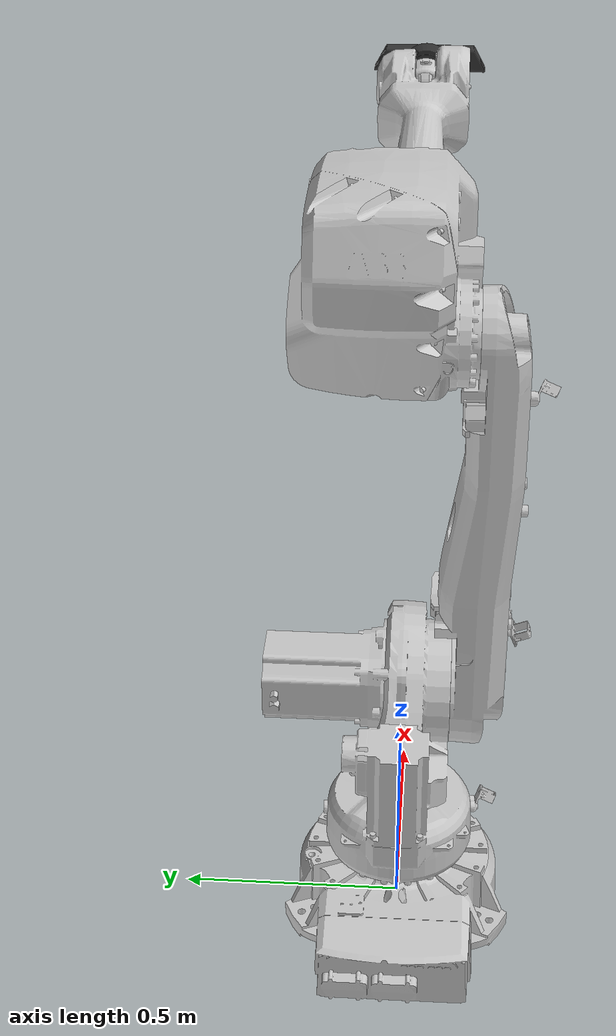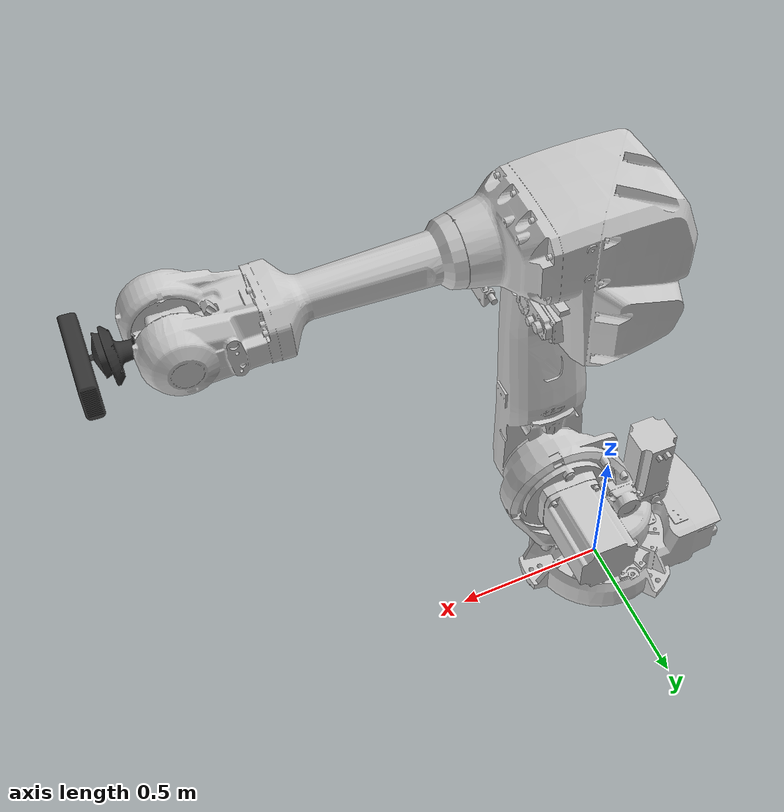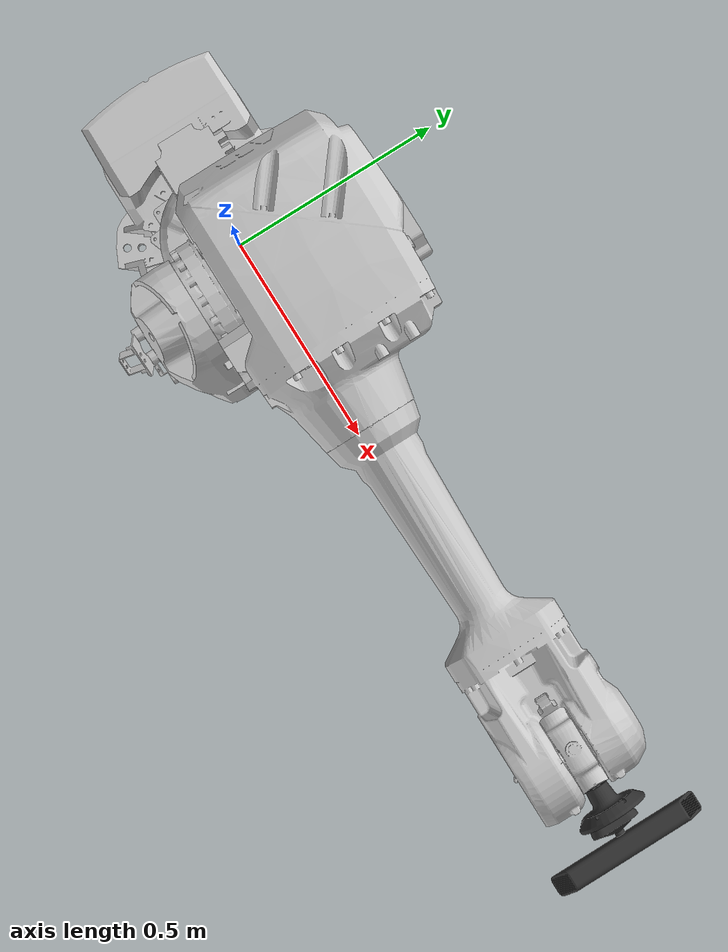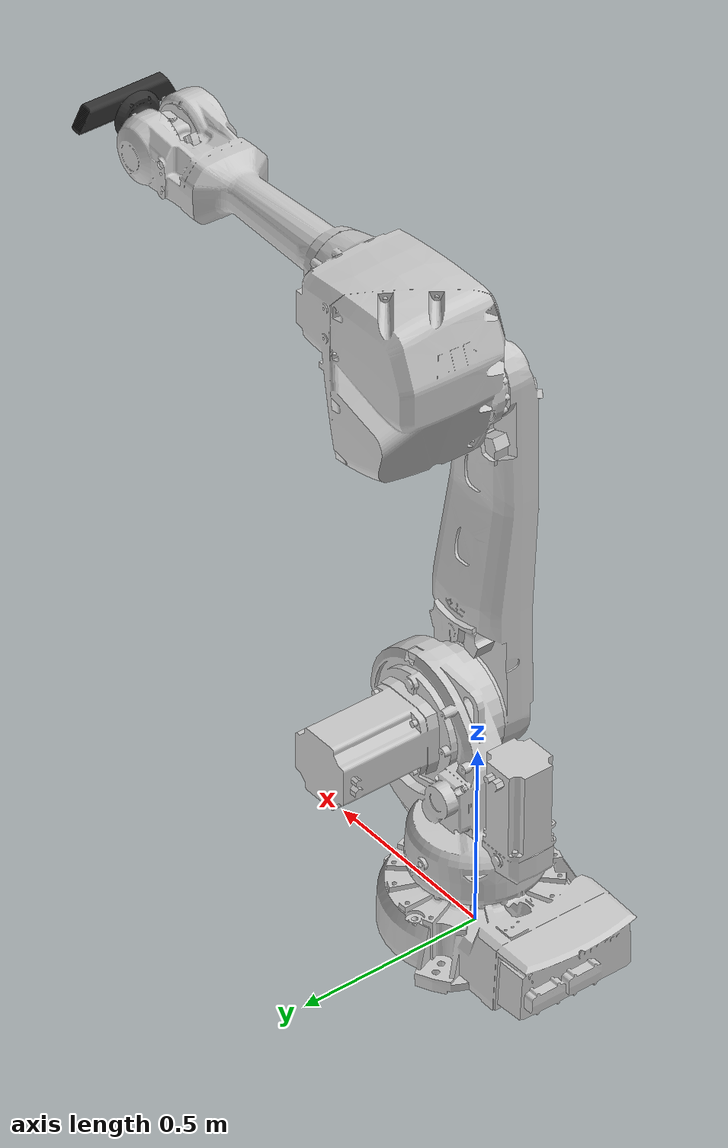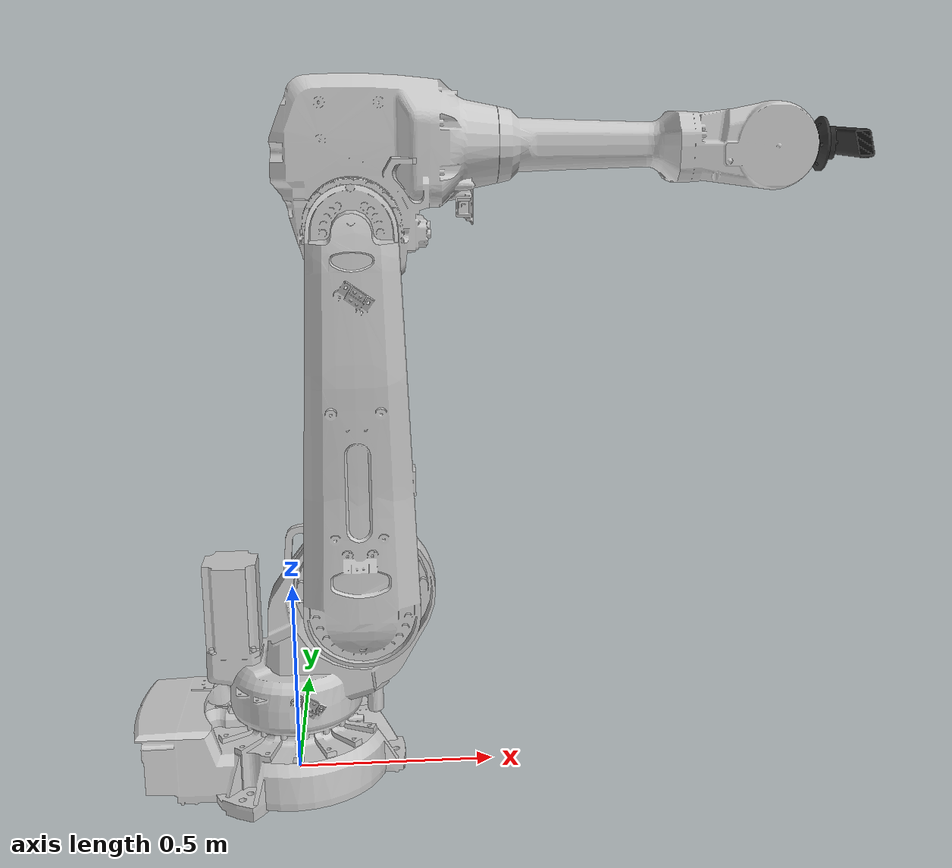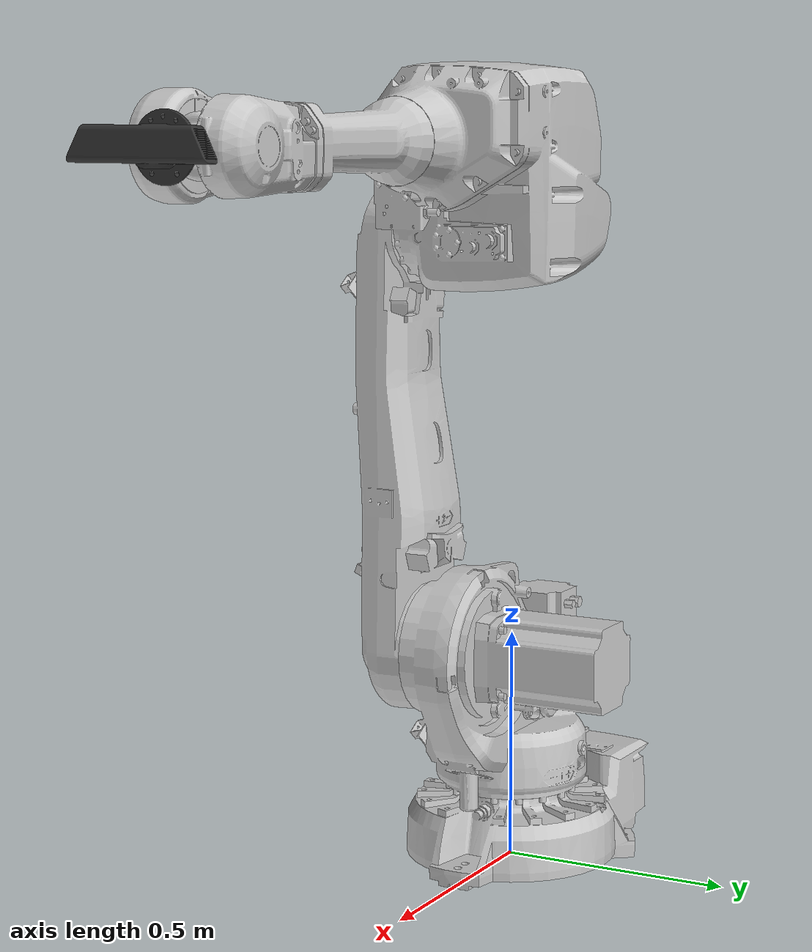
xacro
<?xml version="1.0"?>
<robot xmlns:xacro="http://www.ros.org/wiki/xacro" name="abb_irb">
    <xacro:arg name="initial_positions_file" default="initial_positions.yaml" />

    <!-- Import abb_irb urdf file -->
    <xacro:include filename="$(find abb_model)/urdf/abb_irb4600_60_205.xacro" />

    <!-- Import control_xacro -->
    <xacro:include filename="abb_irb.ros2_control.xacro" />

    <xacro:abb_irb_ros2_control name="FakeSystem" initial_positions_file="$(arg initial_positions_file)"/>

</robot>

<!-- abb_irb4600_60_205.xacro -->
<robot name="abb_irb" xmlns:xacro="http://ros.org/wiki/xacro">

	<xacro:include filename="$(find abb_model)/urdf/abb_irb4600_60_205_macro.xacro" />
	<xacro:abb_irb4600_60_205 prefix=""/>

    <xacro:include filename="$(find abb_model)/urdf/camera.xacro" />

</robot>

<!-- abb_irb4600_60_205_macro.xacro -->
<robot xmlns:xacro="http://ros.org/wiki/xacro">

    <xacro:macro name="abb_irb4600_60_205" params="prefix">
    <!-- link list -->
        <link name="world"/>

        <joint name="to_world" type="fixed">
            <origin xyz="0 0 0" rpy="0 0 0" />
            <parent link="world"/>
            <child link="${prefix}base_link"/>
        </joint>

        <link name="${prefix}base_link">
            <visual>
                <origin xyz="0 0 0" rpy="0 0 0" />
                <geometry>
                    <mesh filename="package://abb_model/meshes/abb_irb4600_60_205/visual/base_link.stl"/>
                </geometry>
                <material name="abb_white">
                    <color rgba="0.8 0.8 0.8 1" />
                </material>
            </visual>
            <collision>
            <origin xyz="0 0 0" rpy="0 0 0" />
                <geometry>
                    <mesh filename="package://abb_model/meshes/abb_irb4600_60_205/collision/base_link.stl"/>
                </geometry>
                <material name="yellow">
                    <color rgba="0 1 1 1"/>
            </material>
            </collision>
            <inertial>
                  <origin xyz="0 0 0" rpy="0 0 0"/>
                  <mass value="1"/>
                  <inertia ixx="0.05" ixy="0.0" ixz="0.0" iyy="0.05" iyz="0.0" izz="0.05"/>
            </inertial>
        </link>

        <link name="${prefix}link_1">
            <visual>
              <origin xyz="0 0 0" rpy="0 0 0" />
              <geometry>
                <mesh filename="package://abb_model/meshes/abb_irb4600_60_205/visual/link_1.stl"/>
              </geometry>
              <material name="abb_white"/>
            </visual>

            <collision>
             <origin xyz="0 0 0" rpy="0 0 0" />
            <geometry>
              <mesh filename="package://abb_model/meshes/abb_irb4600_60_205/collision/link_1.stl"/>
            </geometry>
            <material name="yellow"/>
            </collision>
            <inertial>
                  <origin xyz="0 0 0" rpy="0 0 0"/>
                  <mass value="1"/>
                  <inertia ixx="0.05" ixy="0.0" ixz="0.0" iyy="0.05" iyz="0.0" izz="0.05"/>
            </inertial>
        </link>

        <link name="${prefix}link_2">
            <visual>
                <origin xyz="0 0 0" rpy="0 0 0" />
                <geometry>
                    <mesh filename="package://abb_model/meshes/abb_irb4600_60_205/visual/link_2.stl"/>
                </geometry>
                <material name="abb_white"/>
            </visual>
            <collision>
                <origin xyz="0 0 0" rpy="0 0 0" />
                <geometry>
                    <mesh filename="package://abb_model/meshes/abb_irb4600_60_205/collision/link_2.stl"/>
                </geometry>
                <material name="yellow"/>
            </collision>
            <inertial>
                  <origin xyz="0 0 0" rpy="0 0 0"/>
                  <mass value="1"/>
                  <inertia ixx="0.05" ixy="0.0" ixz="0.0" iyy="0.05" iyz="0.0" izz="0.05"/>
            </inertial>
        </link>

        <link name="${prefix}link_3">
            <visual>
                <origin xyz="0 0 0" rpy="0 0 0" />
                <geometry>
                    <mesh filename="package://abb_model/meshes/abb_irb4600_60_205/visual/link_3.stl"/>
                </geometry>
                <material name="abb_white"/>
            </visual>
            <collision>
                <origin xyz="0 0 0" rpy="0 0 0" />
                <geometry>
                    <mesh filename="package://abb_model/meshes/abb_irb4600_60_205/collision/link_3.stl"/>
                </geometry>
                <material name="yellow"/>
            </collision>
            <inertial>
                  <origin xyz="0 0 0" rpy="0 0 0"/>
                  <mass value="1"/>
                  <inertia ixx="0.05" ixy="0.0" ixz="0.0" iyy="0.05" iyz="0.0" izz="0.05"/>
            </inertial>
        </link>

        <link name="${prefix}link_4">
            <visual>
                <origin xyz="0 0 0" rpy="0 0 0" />
                <geometry>
                    <mesh filename="package://abb_model/meshes/abb_irb4600_60_205/visual/link_4.stl"/>
                </geometry>
                <material name="abb_white"/>
            </visual>
            <collision>
                <origin xyz="0 0 0" rpy="0 0 0" />
                <geometry>
                    <mesh filename="package://abb_model/meshes/abb_irb4600_60_205/collision/link_4.stl"/>
                </geometry>
                <material name="yellow"/>
            </collision>
            <inertial>
                  <origin xyz="0 0 0" rpy="0 0 0"/>
                  <mass value="1"/>
                  <inertia ixx="0.05" ixy="0.0" ixz="0.0" iyy="0.05" iyz="0.0" izz="0.05"/>
            </inertial>
        </link>

        <link name="${prefix}link_5">
            <visual>
                <origin xyz="0 0 0" rpy="0 0 0" />
                <geometry>
                    <mesh filename="package://abb_model/meshes/abb_irb4600_60_205/visual/link_5.stl"/>
                </geometry>
                <material name="abb_white"/>
            </visual>
            <collision>
                <origin xyz="0 0 0" rpy="0 0 0" />
                <geometry>
                    <mesh filename="package://abb_model/meshes/abb_irb4600_60_205/collision/link_5.stl"/>
                </geometry>
                <material name="yellow"/>
            </collision>
            <inertial>
                  <origin xyz="0 0 0" rpy="0 0 0"/>
                  <mass value="1"/>
                  <inertia ixx="0.05" ixy="0.0" ixz="0.0" iyy="0.05" iyz="0.0" izz="0.05"/>
            </inertial>
        </link>

        <link name="${prefix}link_6">
            <visual>
                <origin xyz="0 0 0" rpy="0 0 0" />
                <geometry>
                    <mesh filename="package://abb_model/meshes/abb_irb4600_60_205/visual/link_6.stl"/>
                </geometry>
                <material name="abb_grey">
                    <color rgba="0.2 0.2 0.2 1" />
                </material>
            </visual>
            <collision>
               <origin xyz="0 0 0" rpy="0 0 0" />
                  <geometry>
                     <mesh filename="package://abb_model/meshes/abb_irb4600_60_205/collision/link_6.stl"/>
                  </geometry>
                  <material name="yellow"/>
            </collision>
            <inertial>
                  <origin xyz="0 0 0" rpy="0 0 0"/>
                  <mass value="1"/>
                  <inertia ixx="0.05" ixy="0.0" ixz="0.0" iyy="0.05" iyz="0.0" izz="0.05"/>
            </inertial>
        </link>

        <link name="${prefix}tool0"/>
        <!-- end of link list -->

        <!-- TODO ALL JOINT LIMITS limits are edited and reduced to lower values-->
        <!-- joint list -->

        <joint name="${prefix}joint_1" type="revolute">
            <origin xyz="0 0 0.1535" rpy="1.10409999285604E-14 0 0" />
            <parent link="${prefix}base_link"/>
            <child link="${prefix}link_1"/>
            <axis xyz="0 0 1" />
            <limit lower="-2.62" upper="2.62" effort="1000" velocity="3.05"/>
        </joint>

        <joint name="${prefix}joint_2" type="revolute">
        <origin xyz="0.174999999999998 -0.0515489073390827 0.341500000000001" rpy="-1.57772181044202E-30 0 0" />
            <parent link="${prefix}link_1"/>
            <child link="${prefix}link_2"/>
            <axis xyz="0 1 0"/>
            <limit lower="-1.57" upper="1.57" effort="1000" velocity="3.05"/>
        </joint>

        <joint name="${prefix}joint_3" type="revolute">
            <origin xyz="0 0 0.9" rpy="-1.11022302462516E-14 0 0" />
            <parent link="${prefix}link_2"/>
            <child link="${prefix}link_3"/>
            <axis xyz="0 1 0"/>
            <limit lower="-3.14" upper="1.31" effort="1000" velocity="4.36"/>
        </joint>

        <joint name="${prefix}joint_4" type="revolute">
            <origin xyz="0.331499999999985 0.0515489073390958 0.175000000000008" rpy="0 0 0" />
            <parent link="${prefix}link_3"/>
            <child link="${prefix}link_4"/>
            <axis xyz="1 0 0"/>
            <limit lower="-6.98" upper="6.98" effort="1000" velocity="4.36"/>
        </joint>

        <joint name="${prefix}joint_5" type="revolute">
            <origin xyz="0.628499999999995 0 0" rpy="0 0 0" />
            <parent link="${prefix}link_4"/>
            <child link="${prefix}link_5"/>
            <axis xyz="0 1 0"/>
            <limit lower="-2.09" upper="2.18" effort="1000" velocity="4.36"/>
        </joint>

        <joint name="${prefix}joint_6" type="revolute">
            <origin xyz="0 0 0" rpy="0 0 0" />
            <parent link="${prefix}link_5"/>
            <child link="${prefix}link_6"/>
            <axis xyz="1 0 0"/>
            <limit lower="-6.98" upper="6.98" effort="1000" velocity="6.28"/>
        </joint>

        <joint name="${prefix}joint_6-tool0" type="fixed">
            <parent link="${prefix}link_6"/>
            <child link="${prefix}tool0"/>
            <origin xyz="0.135 0 0" rpy="0 1.570796 0"/>
        </joint>

        <transmission name="tran1">
            <type>transmission_interface/SimpleTransmission</type>
            <joint name="joint_1">
                <hardwareInterface>PositionJointInterface</hardwareInterface>
            </joint>
            <actuator name="motor_1">
                <hardwareInterface>PositionJointInterface</hardwareInterface>
                <mechanicalReduction>1000</mechanicalReduction>
            </actuator>
        </transmission>

        <transmission name="tran2">
            <type>transmission_interface/SimpleTransmission</type>
            <joint name="joint_2">
                <hardwareInterface>PositionJointInterface</hardwareInterface>
            </joint>
            <actuator name="motor_2">
                <hardwareInterface>PositionJointInterface</hardwareInterface>
                <mechanicalReduction>1000</mechanicalReduction>
            </actuator>
        </transmission>

        <transmission name="tran3">
            <type>transmission_interface/SimpleTransmission</type>
            <joint name="joint_3">
                <hardwareInterface>PositionJointInterface</hardwareInterface>
            </joint>
            <actuator name="motor_3">
                <hardwareInterface>PositionJointInterface</hardwareInterface>
                <mechanicalReduction>1000</mechanicalReduction>
            </actuator>
        </transmission>

        <transmission name="tran4">
            <type>transmission_interface/SimpleTransmission</type>
            <joint name="joint_4">
                <hardwareInterface>PositionJointInterface</hardwareInterface>
            </joint>
            <actuator name="motor_4">
                <hardwareInterface>PositionJointInterface</hardwareInterface>
                <mechanicalReduction>1000</mechanicalReduction>
            </actuator>
        </transmission>

        <transmission name="tran5">
            <type>transmission_interface/SimpleTransmission</type>
            <joint name="joint_5">
                <hardwareInterface>PositionJointInterface</hardwareInterface>
            </joint>
            <actuator name="motor_5">
                <hardwareInterface>PositionJointInterface</hardwareInterface>
                <mechanicalReduction>1000</mechanicalReduction>
            </actuator>
        </transmission>

        <transmission name="tran6">
            <type>transmission_interface/SimpleTransmission</type>
            <joint name="joint_6">
                <hardwareInterface>PositionJointInterface</hardwareInterface>
            </joint>
            <actuator name="motor_6">
                <hardwareInterface>PositionJointInterface</hardwareInterface>
                <mechanicalReduction>1000</mechanicalReduction>
            </actuator>
        </transmission>

    </xacro:macro>
</robot>

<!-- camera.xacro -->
<robot name="abb_irb" xmlns:xacro="http://ros.org/wiki/xacro">

    <xacro:include filename="$(find abb_model)/urdf/camera_macro.xacro" />
    <xacro:camera prefix=""/>
</robot>

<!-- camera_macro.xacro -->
<robot xmlns:xacro="http://ros.org/wiki/xacro">

    <xacro:macro name="camera" params="prefix">

      <link name="${prefix}link_depthtf" />

        <link name="${prefix}kinect_mesh">
            <visual>
                <origin rpy="0 0 1.57" xyz="0 0 0"/>
                <geometry>
                    <mesh filename="package://abb_model/meshes/kinect/visual/kinect_sensor.stl" scale ="0.001 0.001 0.001"/>
                </geometry>
                <material name="abb_grey">
                    <color rgba="0.2 0.2 0.2 1" />
                </material>
            </visual>
            <collision>
                <origin xyz="0 0 0" rpy="0 0 1.57" />
                <geometry>
                    <mesh filename="package://abb_model/meshes/kinect/collision/kinect_sensor.stl" scale ="0.001 0.001 0.001"/>
                </geometry>
                <material name="yellow"/>
            </collision>
            <inertial>
                <mass value="1.0" />
                <origin xyz="0 0 0" rpy="0 0 0"/>
                <inertia ixx="0.1" ixy="0.01" ixz="0.01" iyy="0.1" iyz="0.01" izz="0.1" />
            </inertial>
        </link>

        <joint name="${prefix}to_kinect_mesh" type="fixed">
            <parent link="${prefix}tool0"/>
            <child link="${prefix}kinect_mesh"/>
            <origin xyz="0 0 0.015" rpy="0 0 0"/>

        </joint>

        <joint name="${prefix}to_link_depthtf" type="fixed">
            <parent link="${prefix}tool0"/>
            <child link="${prefix}link_depthtf"/>
            <!--origin xyz="0 0 0.015" rpy="0 0 0"/-->
            <origin xyz="0 0 0" rpy="-1.57 0 -1.57"/>
        </joint>

    </xacro:macro>
</robot>
